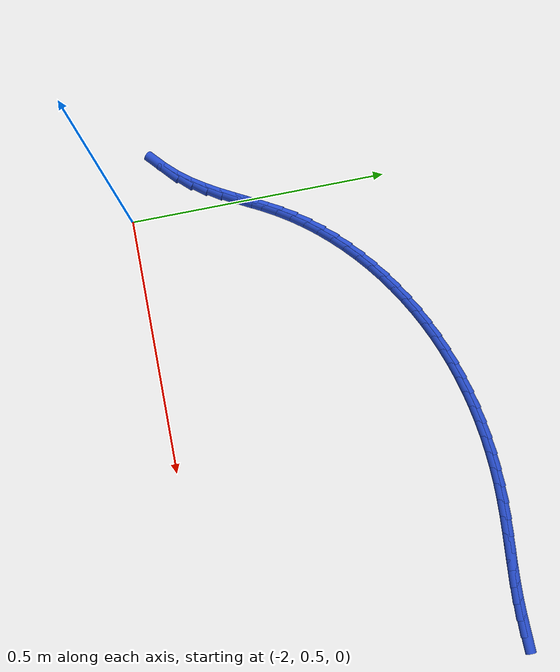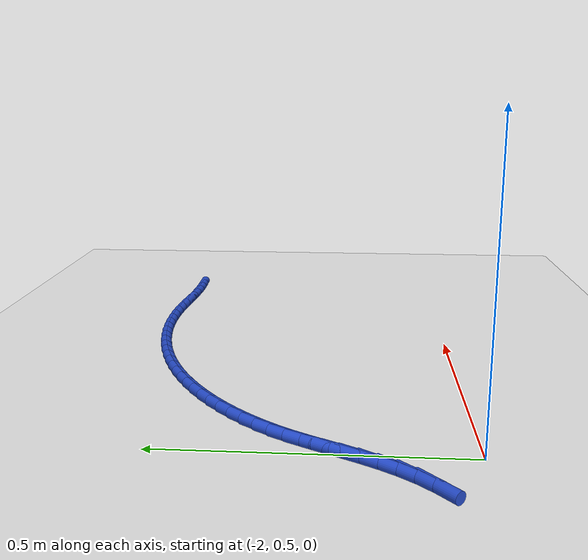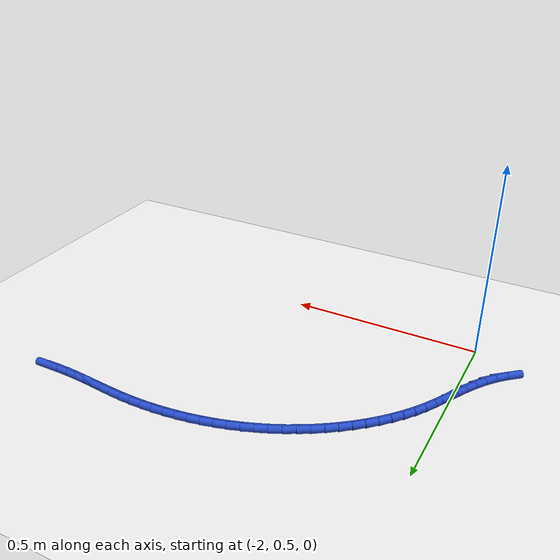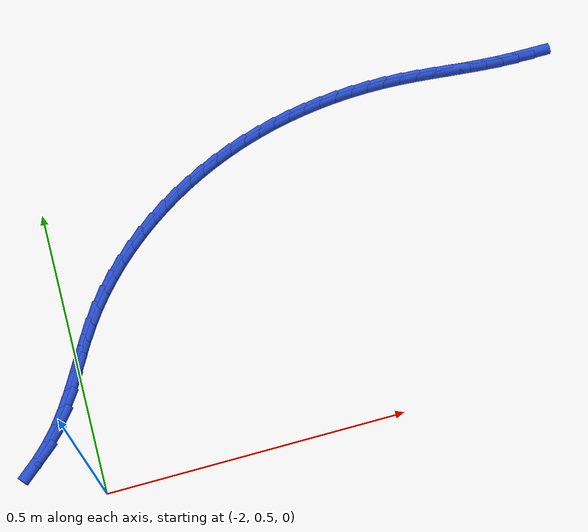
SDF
<sdf version="1.6">
 <world name="default">
  <model name="ground_plane">
   <static>1</static>
   <link name="link">
    <collision name="collision">
     <geometry><plane><normal>0 0 1</normal><size>100 100</size></plane></geometry>
     <surface><friction><ode><mu>100</mu><mu2>50</mu2></ode></friction></surface>
    </collision>
    <visual name="visual">
     <cast_shadows>0</cast_shadows>
     <geometry><plane><normal>0 0 1</normal><size>100 100</size></plane></geometry>
     <material>
      <script><uri>file://media/materials/scripts/gazebo.material</uri><name>Gazebo/WhiteGlow</name></script>
     </material>
    </visual>
   </link>
  </model>
  <model name="line">
   <link name="link_58">
    <pose>-1.0932537785456033 1.0690572558287317 0.01 0 1.57 0.00942708833165252</pose>
    <collision name="collision">
     <geometry><cylinder><radius>0.01</radius><length>0.08</length></cylinder></geometry>
    </collision>
    <visual name="visual">
     <material>
      <script><name>Gazebo/Blue</name><uri>file://media/materials/scripts/gazebo.material</uri></script>
     </material>
     <geometry><cylinder><radius>0.01</radius><length>0.08</length></cylinder></geometry>
    </visual>
   </link>
   <link name="link_59">
    <pose>-1.1230464147395454 1.0687763896954587 0.01 0 1.57 -0.018758464988508604</pose>
    <collision name="collision">
     <geometry><cylinder><radius>0.01</radius><length>0.08</length></cylinder></geometry>
    </collision>
    <visual name="visual">
     <material>
      <script><name>Gazebo/Blue</name><uri>file://media/materials/scripts/gazebo.material</uri></script>
     </material>
     <geometry><cylinder><radius>0.01</radius><length>0.08</length></cylinder></geometry>
    </visual>
   </link>
   <link name="link_60">
    <pose>-1.1527978005126305 1.0693345454933343 0.01 0 1.57 -0.05000343111768362</pose>
    <collision name="collision">
     <geometry><cylinder><radius>0.01</radius><length>0.08</length></cylinder></geometry>
    </collision>
    <visual name="visual">
     <material>
      <script><name>Gazebo/Blue</name><uri>file://media/materials/scripts/gazebo.material</uri></script>
     </material>
     <geometry><cylinder><radius>0.01</radius><length>0.08</length></cylinder></geometry>
    </visual>
   </link>
   <link name="link_61">
    <pose>-1.1826110905676024 1.070826556009064 0.01 0 1.57 -0.07393618287074608</pose>
    <collision name="collision">
     <geometry><cylinder><radius>0.01</radius><length>0.08</length></cylinder></geometry>
    </collision>
    <visual name="visual">
     <material>
      <script><name>Gazebo/Blue</name><uri>file://media/materials/scripts/gazebo.material</uri></script>
     </material>
     <geometry><cylinder><radius>0.01</radius><length>0.08</length></cylinder></geometry>
    </visual>
   </link>
   <link name="link_62">
    <pose>-1.2125145294514361 1.073041539719667 0.01 0 1.57 -0.08624608757727836</pose>
    <collision name="collision">
     <geometry><cylinder><radius>0.01</radius><length>0.08</length></cylinder></geometry>
    </collision>
    <visual name="visual">
     <material>
      <script><name>Gazebo/Blue</name><uri>file://media/materials/scripts/gazebo.material</uri></script>
     </material>
     <geometry><cylinder><radius>0.01</radius><length>0.08</length></cylinder></geometry>
    </visual>
   </link>
   <link name="link_63">
    <pose>-1.2425034748049302 1.0756344010197465 0.01 0 1.57 -0.0870787682468536</pose>
    <collision name="collision">
     <geometry><cylinder><radius>0.01</radius><length>0.08</length></cylinder></geometry>
    </collision>
    <visual name="visual">
     <material>
      <script><name>Gazebo/Blue</name><uri>file://media/materials/scripts/gazebo.material</uri></script>
     </material>
     <geometry><cylinder><radius>0.01</radius><length>0.08</length></cylinder></geometry>
    </visual>
   </link>
   <link name="link_64">
    <pose>-1.272573143329235 1.0782594691179848 0.01 0 1.57 -0.076531521042552</pose>
    <collision name="collision">
     <geometry><cylinder><radius>0.01</radius><length>0.08</length></cylinder></geometry>
    </collision>
    <visual name="visual">
     <material>
      <script><name>Gazebo/Blue</name><uri>file://media/materials/scripts/gazebo.material</uri></script>
     </material>
     <geometry><cylinder><radius>0.01</radius><length>0.08</length></cylinder></geometry>
    </visual>
   </link>
   <link name="link_65">
    <pose>-1.3027187517255008 1.080571073223063 0.01 0 1.57 -0.05463274883324481</pose>
    <collision name="collision">
     <geometry><cylinder><radius>0.01</radius><length>0.08</length></cylinder></geometry>
    </collision>
    <visual name="visual">
     <material>
      <script><name>Gazebo/Blue</name><uri>file://media/materials/scripts/gazebo.material</uri></script>
     </material>
     <geometry><cylinder><radius>0.01</radius><length>0.08</length></cylinder></geometry>
    </visual>
   </link>
   <link name="link_66">
    <pose>-1.3329355166948793 1.0822235425436633 0.01 0 1.57 -0.022350645886211076</pose>
    <collision name="collision">
     <geometry><cylinder><radius>0.01</radius><length>0.08</length></cylinder></geometry>
    </collision>
    <visual name="visual">
     <material>
      <script><name>Gazebo/Blue</name><uri>file://media/materials/scripts/gazebo.material</uri></script>
     </material>
     <geometry><cylinder><radius>0.01</radius><length>0.08</length></cylinder></geometry>
    </visual>
   </link>
   <link name="link_67">
    <pose>-1.363214995582436 1.0829004211695339 0.01 0 1.57 0.013401554270666772</pose>
    <collision name="collision">
     <geometry><cylinder><radius>0.01</radius><length>0.08</length></cylinder></geometry>
    </collision>
    <visual name="visual">
     <material>
      <script><name>Gazebo/Blue</name><uri>file://media/materials/scripts/gazebo.material</uri></script>
     </material>
     <geometry><cylinder><radius>0.01</radius><length>0.08</length></cylinder></geometry>
    </visual>
   </link>
   <link name="link_68">
    <pose>-1.3935225702326146 1.0824942282451153 0.01 0 1.57 0.049670177782907304</pose>
    <collision name="collision">
     <geometry><cylinder><radius>0.01</radius><length>0.08</length></cylinder></geometry>
    </collision>
    <visual name="visual">
     <material>
      <script><name>Gazebo/Blue</name><uri>file://media/materials/scripts/gazebo.material</uri></script>
     </material>
     <geometry><cylinder><radius>0.01</radius><length>0.08</length></cylinder></geometry>
    </visual>
   </link>
   <link name="link_69">
    <pose>-1.423812222331684 1.080988497360439 0.01 0 1.57 0.08650983107773058</pose>
    <collision name="collision">
     <geometry><cylinder><radius>0.01</radius><length>0.08</length></cylinder></geometry>
    </collision>
    <visual name="visual">
     <material>
      <script><name>Gazebo/Blue</name><uri>file://media/materials/scripts/gazebo.material</uri></script>
     </material>
     <geometry><cylinder><radius>0.01</radius><length>0.08</length></cylinder></geometry>
    </visual>
   </link>
   <link name="link_70">
    <pose>-1.454037886530822 1.0783671376154902 0.01 0 1.57 0.12398317968585287</pose>
    <collision name="collision">
     <geometry><cylinder><radius>0.01</radius><length>0.08</length></cylinder></geometry>
    </collision>
    <visual name="visual">
     <material>
      <script><name>Gazebo/Blue</name><uri>file://media/materials/scripts/gazebo.material</uri></script>
     </material>
     <geometry><cylinder><radius>0.01</radius><length>0.08</length></cylinder></geometry>
    </visual>
   </link>
   <link name="link_71">
    <pose>-1.4841534974812054 1.0746140581102548 0.01 0 1.57 0.1621477234165601</pose>
    <collision name="collision">
     <geometry><cylinder><radius>0.01</radius><length>0.08</length></cylinder></geometry>
    </collision>
    <visual name="visual">
     <material>
      <script><name>Gazebo/Blue</name><uri>file://media/materials/scripts/gazebo.material</uri></script>
     </material>
     <geometry><cylinder><radius>0.01</radius><length>0.08</length></cylinder></geometry>
    </visual>
   </link>
   <link name="link_72">
    <pose>-1.514112989834012 1.069713167944718 0.01 0 1.57 0.20105486119309599</pose>
    <collision name="collision">
     <geometry><cylinder><radius>0.01</radius><length>0.08</length></cylinder></geometry>
    </collision>
    <visual name="visual">
     <material>
      <script><name>Gazebo/Blue</name><uri>file://media/materials/scripts/gazebo.material</uri></script>
     </material>
     <geometry><cylinder><radius>0.01</radius><length>0.08</length></cylinder></geometry>
    </visual>
   </link>
   <link name="link_73">
    <pose>-1.5438702982404182 1.0636483762188644 0.01 0 1.57 0.24074881886641347</pose>
    <collision name="collision">
     <geometry><cylinder><radius>0.01</radius><length>0.08</length></cylinder></geometry>
    </collision>
    <visual name="visual">
     <material>
      <script><name>Gazebo/Blue</name><uri>file://media/materials/scripts/gazebo.material</uri></script>
     </material>
     <geometry><cylinder><radius>0.01</radius><length>0.08</length></cylinder></geometry>
    </visual>
   </link>
   <link name="link_74">
    <pose>-1.5733793573516022 1.05640359203268 0.01 0 1.57 0.28126545219534943</pose>
    <collision name="collision">
     <geometry><cylinder><radius>0.01</radius><length>0.08</length></cylinder></geometry>
    </collision>
    <visual name="visual">
     <material>
      <script><name>Gazebo/Blue</name><uri>file://media/materials/scripts/gazebo.material</uri></script>
     </material>
     <geometry><cylinder><radius>0.01</radius><length>0.08</length></cylinder></geometry>
    </visual>
   </link>
   <link name="link_75">
    <pose>-1.6025941018187406 1.0479627244861498 0.01 0 1.57 0.32263094832082445</pose>
    <collision name="collision">
     <geometry><cylinder><radius>0.01</radius><length>0.08</length></cylinder></geometry>
    </collision>
    <visual name="visual">
     <material>
      <script><name>Gazebo/Blue</name><uri>file://media/materials/scripts/gazebo.material</uri></script>
     </material>
     <geometry><cylinder><radius>0.01</radius><length>0.08</length></cylinder></geometry>
    </visual>
   </link>
   <link name="link_76">
    <pose>-1.6314684662930117 1.0383096826792597 0.01 0 1.57 0.3648604623519446</pose>
    <collision name="collision">
     <geometry><cylinder><radius>0.01</radius><length>0.08</length></cylinder></geometry>
    </collision>
    <visual name="visual">
     <material>
      <script><name>Gazebo/Blue</name><uri>file://media/materials/scripts/gazebo.material</uri></script>
     </material>
     <geometry><cylinder><radius>0.01</radius><length>0.08</length></cylinder></geometry>
    </visual>
   </link>
   <link name="link_77">
    <pose>-1.6599563854255917 1.0274283757119942 0.01 0 1.57 0.40795674063296233</pose>
    <collision name="collision">
     <geometry><cylinder><radius>0.01</radius><length>0.08</length></cylinder></geometry>
    </collision>
    <visual name="visual">
     <material>
      <script><name>Gazebo/Blue</name><uri>file://media/materials/scripts/gazebo.material</uri></script>
     </material>
     <geometry><cylinder><radius>0.01</radius><length>0.08</length></cylinder></geometry>
    </visual>
   </link>
   <link name="link_78">
    <pose>-1.6880117938676589 1.0153027126843388 0.01 0 1.57 0.4518127719774309</pose>
    <collision name="collision">
     <geometry><cylinder><radius>0.01</radius><length>0.08</length></cylinder></geometry>
    </collision>
    <visual name="visual">
     <material>
      <script><name>Gazebo/Blue</name><uri>file://media/materials/scripts/gazebo.material</uri></script>
     </material>
     <geometry><cylinder><radius>0.01</radius><length>0.08</length></cylinder></geometry>
    </visual>
   </link>
   <link name="link_79">
    <pose>-1.7155846062768338 1.0019218254635944 0.01 0 1.57 0.4958690057244176</pose>
    <collision name="collision">
     <geometry><cylinder><radius>0.01</radius><length>0.08</length></cylinder></geometry>
    </collision>
    <visual name="visual">
     <material>
      <script><name>Gazebo/Blue</name><uri>file://media/materials/scripts/gazebo.material</uri></script>
     </material>
     <geometry><cylinder><radius>0.01</radius><length>0.08</length></cylinder></geometry>
    </visual>
   </link>
   <link name="link_80">
    <pose>-1.7425988845993745 0.9873084337062084 0.01 0 1.57 0.5400886727159594</pose>
    <collision name="collision">
     <geometry><cylinder><radius>0.01</radius><length>0.08</length></cylinder></geometry>
    </collision>
    <visual name="visual">
     <material>
      <script><name>Gazebo/Blue</name><uri>file://media/materials/scripts/gazebo.material</uri></script>
     </material>
     <geometry><cylinder><radius>0.01</radius><length>0.08</length></cylinder></geometry>
    </visual>
   </link>
   <link name="link_81">
    <pose>-1.7689684577466154 0.9714985518064381 0.01 0 1.57 0.584697725505651</pose>
    <collision name="collision">
     <geometry><cylinder><radius>0.01</radius><length>0.08</length></cylinder></geometry>
    </collision>
    <visual name="visual">
     <material>
      <script><name>Gazebo/Blue</name><uri>file://media/materials/scripts/gazebo.material</uri></script>
     </material>
     <geometry><cylinder><radius>0.01</radius><length>0.08</length></cylinder></geometry>
    </visual>
   </link>
   <link name="link_82">
    <pose>-1.7946071291954875 0.9545282272028681 0.01 0 1.57 0.6299196422893433</pose>
    <collision name="collision">
     <geometry><cylinder><radius>0.01</radius><length>0.08</length></cylinder></geometry>
    </collision>
    <visual name="visual">
     <material>
      <script><name>Gazebo/Blue</name><uri>file://media/materials/scripts/gazebo.material</uri></script>
     </material>
     <geometry><cylinder><radius>0.01</radius><length>0.08</length></cylinder></geometry>
    </visual>
   </link>
   <link name="link_83">
    <pose>-1.8194287024229219 0.9364335073340827 0.01 0 1.57 0.6759747436844872</pose>
    <collision name="collision">
     <geometry><cylinder><radius>0.01</radius><length>0.08</length></cylinder></geometry>
    </collision>
    <visual name="visual">
     <material>
      <script><name>Gazebo/Blue</name><uri>file://media/materials/scripts/gazebo.material</uri></script>
     </material>
     <geometry><cylinder><radius>0.01</radius><length>0.08</length></cylinder></geometry>
    </visual>
   </link>
   <link name="link_84">
    <pose>-1.8433469809058487 0.9172504396386657 0.01 0 1.57 0.7230795224403567</pose>
    <collision name="collision">
     <geometry><cylinder><radius>0.01</radius><length>0.08</length></cylinder></geometry>
    </collision>
    <visual name="visual">
     <material>
      <script><name>Gazebo/Blue</name><uri>file://media/materials/scripts/gazebo.material</uri></script>
     </material>
     <geometry><cylinder><radius>0.01</radius><length>0.08</length></cylinder></geometry>
    </visual>
   </link>
   <link name="link_85">
    <pose>-1.8662757681211997 0.8970150715552011 0.01 0 1.57 0.7714451821042881</pose>
    <collision name="collision">
     <geometry><cylinder><radius>0.01</radius><length>0.08</length></cylinder></geometry>
    </collision>
    <visual name="visual">
     <material>
      <script><name>Gazebo/Blue</name><uri>file://media/materials/scripts/gazebo.material</uri></script>
     </material>
     <geometry><cylinder><radius>0.01</radius><length>0.08</length></cylinder></geometry>
    </visual>
   </link>
   <link name="link_86">
    <pose>-1.888128867545904 0.8757634505222736 0.01 0 1.57 0.8212751728624806</pose>
    <collision name="collision">
     <geometry><cylinder><radius>0.01</radius><length>0.08</length></cylinder></geometry>
    </collision>
    <visual name="visual">
     <material>
      <script><name>Gazebo/Blue</name><uri>file://media/materials/scripts/gazebo.material</uri></script>
     </material>
     <geometry><cylinder><radius>0.01</radius><length>0.08</length></cylinder></geometry>
    </visual>
   </link>
   <link name="link_87">
    <pose>-1.9088200826568933 0.8535316239784669 0.01 0 1.57 0.8727615062302179</pose>
    <collision name="collision">
     <geometry><cylinder><radius>0.01</radius><length>0.08</length></cylinder></geometry>
    </collision>
    <visual name="visual">
     <material>
      <script><name>Gazebo/Blue</name><uri>file://media/materials/scripts/gazebo.material</uri></script>
     </material>
     <geometry><cylinder><radius>0.01</radius><length>0.08</length></cylinder></geometry>
    </visual>
   </link>
   <link name="link_88">
    <pose>-1.9282632169310976 0.8303556393623649 0.01 0 1.57 0.9260796449915026</pose>
    <collision name="collision">
     <geometry><cylinder><radius>0.01</radius><length>0.08</length></cylinder></geometry>
    </collision>
    <visual name="visual">
     <material>
      <script><name>Gazebo/Blue</name><uri>file://media/materials/scripts/gazebo.material</uri></script>
     </material>
     <geometry><cylinder><radius>0.01</radius><length>0.08</length></cylinder></geometry>
    </visual>
   </link>
   <link name="link_89">
    <pose>-1.9463720738454489 0.8062715441125519 0.01 0 1.57 0.9813757290885108</pose>
    <collision name="collision">
     <geometry><cylinder><radius>0.01</radius><length>0.08</length></cylinder></geometry>
    </collision>
    <visual name="visual">
     <material>
      <script><name>Gazebo/Blue</name><uri>file://media/materials/scripts/gazebo.material</uri></script>
     </material>
     <geometry><cylinder><radius>0.01</radius><length>0.08</length></cylinder></geometry>
    </visual>
   </link>
   <link name="link_90">
    <pose>-1.9630606290504664 0.7813154570088731 0.01 0 1.57 1.0331622714868771</pose>
    <collision name="collision">
     <geometry><cylinder><radius>0.01</radius><length>0.08</length></cylinder></geometry>
    </collision>
    <visual name="visual">
     <material>
      <script><name>Gazebo/Blue</name><uri>file://media/materials/scripts/gazebo.material</uri></script>
     </material>
     <geometry><cylinder><radius>0.01</radius><length>0.08</length></cylinder></geometry>
    </visual>
   </link>
   <link name="link_91">
    <pose>-1.9783995519758766 0.7555884239303907 0.01 0 1.57 1.0653481748186173</pose>
    <collision name="collision">
     <geometry><cylinder><radius>0.01</radius><length>0.08</length></cylinder></geometry>
    </collision>
    <visual name="visual">
     <material>
      <script><name>Gazebo/Blue</name><uri>file://media/materials/scripts/gazebo.material</uri></script>
     </material>
     <geometry><cylinder><radius>0.01</radius><length>0.08</length></cylinder></geometry>
    </visual>
   </link>
   <link name="link_92">
    <pose>-1.9929053293280088 0.7293762180803652 0.01 0 1.57 1.074981489967865</pose>
    <collision name="collision">
     <geometry><cylinder><radius>0.01</radius><length>0.08</length></cylinder></geometry>
    </collision>
    <visual name="visual">
     <material>
      <script><name>Gazebo/Blue</name><uri>file://media/materials/scripts/gazebo.material</uri></script>
     </material>
     <geometry><cylinder><radius>0.01</radius><length>0.08</length></cylinder></geometry>
    </visual>
   </link>
   <link name="link_93">
    <pose>-2.0071732046945505 0.7029972460944494 0.01 0 1.57 1.062111990672079</pose>
    <collision name="collision">
     <geometry><cylinder><radius>0.01</radius><length>0.08</length></cylinder></geometry>
    </collision>
    <visual name="visual">
     <material>
      <script><name>Gazebo/Blue</name><uri>file://media/materials/scripts/gazebo.material</uri></script>
     </material>
     <geometry><cylinder><radius>0.01</radius><length>0.08</length></cylinder></geometry>
    </visual>
   </link>
   <link name="link_94">
    <pose>-2.021798421663188 0.6767699146082956 0.01 0 1.57 1.0268606699582492</pose>
    <collision name="collision">
     <geometry><cylinder><radius>0.01</radius><length>0.08</length></cylinder></geometry>
    </collision>
    <visual name="visual">
     <material>
      <script><name>Gazebo/Blue</name><uri>file://media/materials/scripts/gazebo.material</uri></script>
     </material>
     <geometry><cylinder><radius>0.01</radius><length>0.08</length></cylinder></geometry>
    </visual>
   </link>
   <link name="link_95">
    <pose>-2.037376223821608 0.6510126302575568 0.01 0 1.57 0.9696096093363901</pose>
    <collision name="collision">
     <geometry><cylinder><radius>0.01</radius><length>0.08</length></cylinder></geometry>
    </collision>
    <visual name="visual">
     <material>
      <script><name>Gazebo/Blue</name><uri>file://media/materials/scripts/gazebo.material</uri></script>
     </material>
     <geometry><cylinder><radius>0.01</radius><length>0.08</length></cylinder></geometry>
    </visual>
   </link>
   <link name="link_96">
    <pose>-2.0545018547574982 0.6260437996778851 0.01 0 1.57 0.8914947962574322</pose>
    <collision name="collision">
     <geometry><cylinder><radius>0.01</radius><length>0.08</length></cylinder></geometry>
    </collision>
    <visual name="visual">
     <material>
      <script><name>Gazebo/Blue</name><uri>file://media/materials/scripts/gazebo.material</uri></script>
     </material>
     <geometry><cylinder><radius>0.01</radius><length>0.08</length></cylinder></geometry>
    </visual>
   </link>
   <link name="link_97">
    <pose>-2.0737705580585444 0.6021818295049339 0.01 0 1.57 0.7966700097682092</pose>
    <collision name="collision">
     <geometry><cylinder><radius>0.01</radius><length>0.08</length></cylinder></geometry>
    </collision>
    <visual name="visual">
     <material>
      <script><name>Gazebo/Blue</name><uri>file://media/materials/scripts/gazebo.material</uri></script>
     </material>
     <geometry><cylinder><radius>0.01</radius><length>0.08</length></cylinder></geometry>
    </visual>
   </link>
   <link name="link_98">
    <pose>-2.095726746022481 0.579725003669642 0.01 0 1.57 0.7181205632307416</pose>
    <collision name="collision">
     <geometry><cylinder><radius>0.01</radius><length>0.08</length></cylinder></geometry>
    </collision>
    <visual name="visual">
     <material>
      <script><name>Gazebo/Blue</name><uri>file://media/materials/scripts/gazebo.material</uri></script>
     </material>
     <geometry><cylinder><radius>0.01</radius><length>0.08</length></cylinder></geometry>
    </visual>
   </link>
  </model>
 </world>
</sdf>
